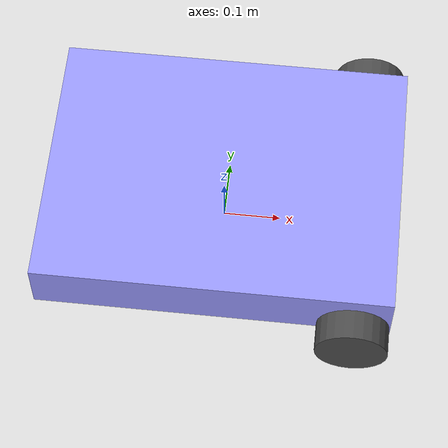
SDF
<?xml version='1.0'?>
<sdf version='1.4'>
  <model name="Collection_bot">
    <static>false</static>

    <link name="base_link">
      <pose>0 0 0.1 0 0 0</pose>
      <collision name="collision">
        <geometry>
          <box>
            <size>0.6096 0.4572 0.1</size>
          </box>
        </geometry>
      </collision>
      <visual name="visual">
        <geometry>
          <box>
            <size>0.6096 0.4572 0.1</size>
          </box>
        </geometry>
        <material>
          <ambient>0.6 0.6 1 1</ambient>
          <diffuse>0.6 0.6 1 1</diffuse>
          <specular>0.1 0.1 0.1 1</specular>
          <emissive>0 0 0 0</emissive>
        </material>
      </visual>

      <collision name="caster_collision">
        <pose>-0.254 0 -0.06905 0 0 0</pose>
        <geometry>
          <sphere>
            <radius>0.03175</radius>
          </sphere>
        </geometry>
        <surface>
          <friction>
            <ode>
              <mu>0</mu>
              <mu2>0</mu2>
              <slip1>1.0</slip1>
              <slip2>1.0</slip2>
            </ode>
          </friction>
        </surface>
      </collision>
      <visual name="caster_visual">
        <pose>-0.254 0 -0.06905 0 0 0</pose>
        <geometry>
          <sphere>
            <radius>0.03175</radius>
          </sphere>
        </geometry>
        <material>
          <ambient>0.3 0.3 0.3 1</ambient>
          <diffuse>0.3 0.3 0.3 1</diffuse>
          <specular>0.1 0.1 0.1 1</specular>
          <emissive>0 0 0 0</emissive>
        </material>
      </visual>
    </link>

    <link name="left_wheel_link">
      <pose>0.2413 -0.2536 0.0619125 1.57079632679 0 0</pose>
      <collision name="collision">
        <geometry>
          <cylinder>
            <length>0.05</length>
            <radius>0.0619125</radius>
          </cylinder>
        </geometry>
      </collision>
      <visual name="visual">
        <geometry>
          <cylinder>
            <length>0.05</length>
            <radius>0.0619125</radius>
          </cylinder>
        </geometry>
        <material>
          <ambient>0.3 0.3 0.3 1</ambient>
          <diffuse>0.3 0.3 0.3 1</diffuse>
          <specular>0.1 0.1 0.1 1</specular>
          <emissive>0 0 0 0</emissive>
        </material>
      </visual>
    </link>

    <link name="right_wheel_link">
      <pose>0.2413 0.2536 0.0619125 1.57079632679 0 0</pose>
      <collision name="collision">
        <geometry>
          <cylinder>
            <length>0.05</length>
            <radius>0.0619125</radius>
          </cylinder>
        </geometry>
      </collision>
      <visual name="visual">
        <geometry>
          <cylinder>
            <length>0.05</length>
            <radius>0.0619125</radius>
          </cylinder>
        </geometry>
        <material>
          <ambient>0.3 0.3 0.3 1</ambient>
          <diffuse>0.3 0.3 0.3 1</diffuse>
          <specular>0.1 0.1 0.1 1</specular>
          <emissive>0 0 0 0</emissive>
        </material>
      </visual>
    </link>

    <!-- Joints -->
    <joint name="base_left_wheel" type="revolute">
      <parent>base_link</parent>
      <child>left_wheel_link</child>
      <axis>
        <xyz>0 1 0</xyz>
      </axis>
    </joint>

    <joint name="base_right_wheel" type="revolute">
      <parent>base_link</parent>
      <child>right_wheel_link</child>
      <axis>
        <xyz>0 1 0</xyz>
      </axis>
    </joint>
  </model>
</sdf>
